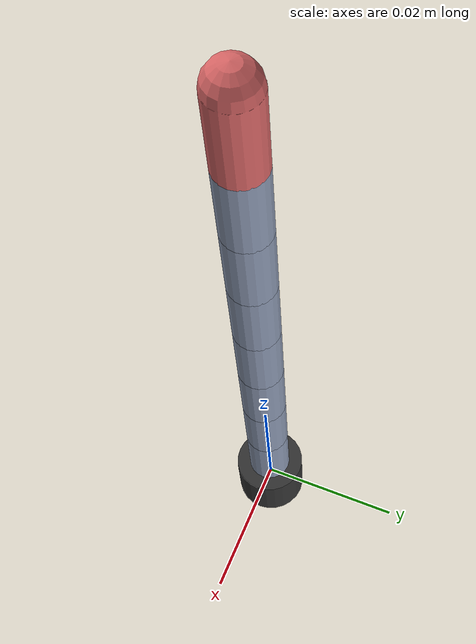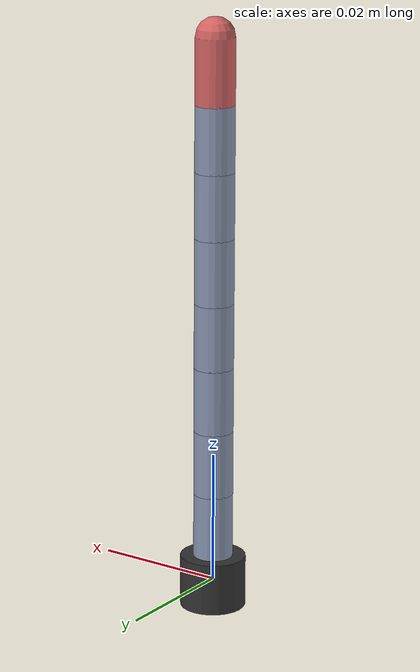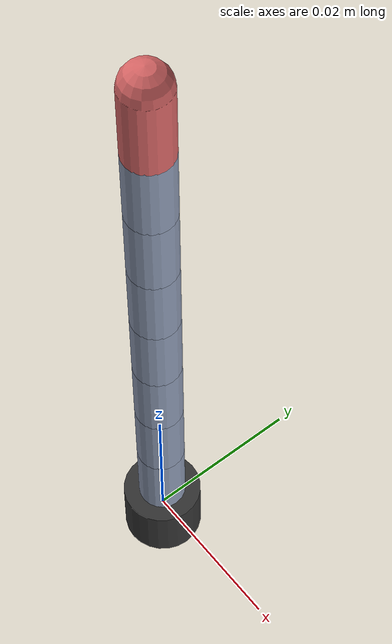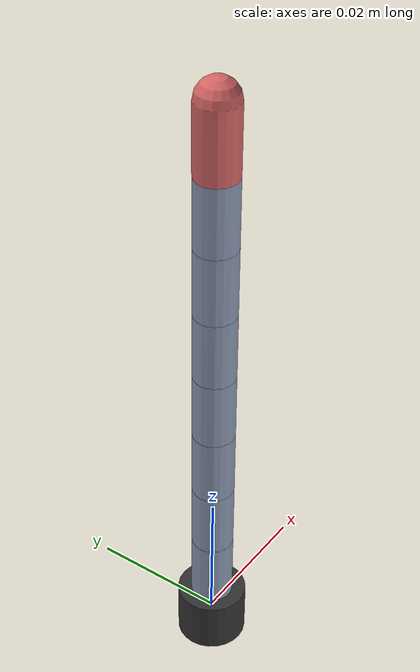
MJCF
<mujoco model="continuum_catheter">
  <compiler angle="radian" autolimits="true"/>
  <option timestep="0.002" gravity="0 0 -9.81" integrator="implicitfast"/>

  <default>
    <default class="seg">
      <joint type="hinge" stiffness="0.02" damping="0.003" armature="1e-6" range="-0.35 0.35"/>
      <geom type="capsule" fromto="0 0 0 0 0 0.01" size="0.003" mass="0.0005" rgba="0.55 0.6 0.7 1"/>
    </default>
  </default>

  <worldbody>
    <light pos="0 0 0.3" dir="0 0 -1"/>
    <camera name="side" pos="0.25 0 0.06" xyaxes="0 -1 0 0 0 1"/>

    <body name="base" pos="0 0 0">
      <geom type="cylinder" size="0.005 0.004" rgba="0.2 0.2 0.2 1" mass="0.02"/>

      <body name="link1" pos="0 0 0.004" childclass="seg">
        <joint name="j1x" axis="1 0 0"/>
        <joint name="j1y" axis="0 1 0"/>
        <geom/>
        <body name="link2" pos="0 0 0.01">
          <joint name="j2x" axis="1 0 0"/>
          <joint name="j2y" axis="0 1 0"/>
          <geom/>
          <body name="link3" pos="0 0 0.01">
            <joint name="j3x" axis="1 0 0"/>
            <joint name="j3y" axis="0 1 0"/>
            <geom/>
            <body name="link4" pos="0 0 0.01">
              <joint name="j4x" axis="1 0 0"/>
              <joint name="j4y" axis="0 1 0"/>
              <geom/>
              <body name="link5" pos="0 0 0.01">
                <joint name="j5x" axis="1 0 0"/>
                <joint name="j5y" axis="0 1 0"/>
                <geom/>
                <body name="link6" pos="0 0 0.01">
                  <joint name="j6x" axis="1 0 0"/>
                  <joint name="j6y" axis="0 1 0"/>
                  <geom/>
                  <body name="link7" pos="0 0 0.01">
                    <joint name="j7x" axis="1 0 0"/>
                    <joint name="j7y" axis="0 1 0"/>
                    <geom/>
                    <body name="link8" pos="0 0 0.01">
                      <joint name="j8x" axis="1 0 0"/>
                      <joint name="j8y" axis="0 1 0"/>
                      <geom rgba="0.85 0.4 0.4 1"/>
                      <site name="tip" pos="0 0 0.01" size="0.002" rgba="1 0 0 1"/>
                    </body>
                  </body>
                </body>
              </body>
            </body>
          </body>
        </body>
      </body>
    </body>
  </worldbody>

  <tendon>
    <fixed name="bend_x">
      <joint joint="j1x" coef="1"/>
      <joint joint="j2x" coef="1"/>
      <joint joint="j3x" coef="1"/>
      <joint joint="j4x" coef="1"/>
      <joint joint="j5x" coef="1"/>
      <joint joint="j6x" coef="1"/>
      <joint joint="j7x" coef="1"/>
      <joint joint="j8x" coef="1"/>
    </fixed>
    <fixed name="bend_y">
      <joint joint="j1y" coef="1"/>
      <joint joint="j2y" coef="1"/>
      <joint joint="j3y" coef="1"/>
      <joint joint="j4y" coef="1"/>
      <joint joint="j5y" coef="1"/>
      <joint joint="j6y" coef="1"/>
      <joint joint="j7y" coef="1"/>
      <joint joint="j8y" coef="1"/>
    </fixed>
  </tendon>

  <actuator>
    <motor name="act_x" tendon="bend_x" ctrlrange="-1 1" gear="0.005"/>
    <motor name="act_y" tendon="bend_y" ctrlrange="-1 1" gear="0.005"/>
  </actuator>
</mujoco>
